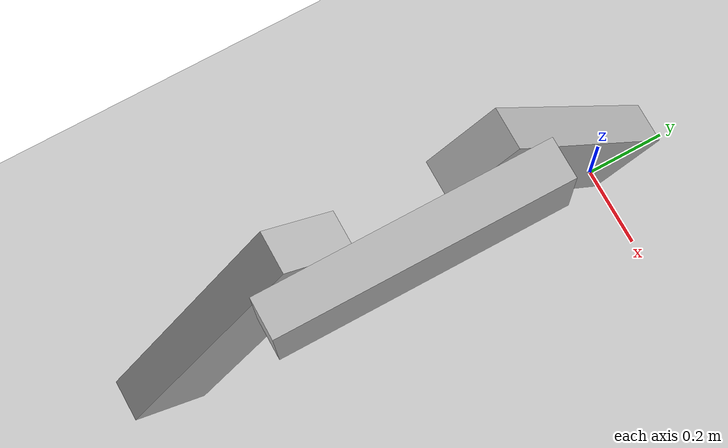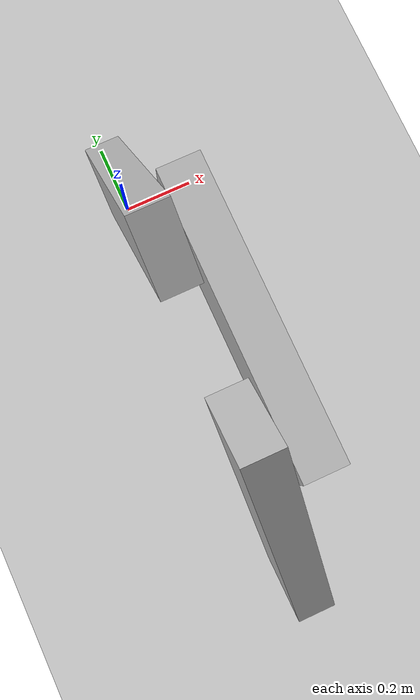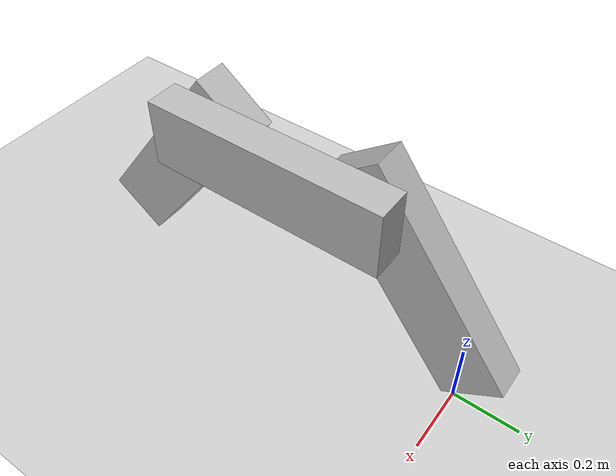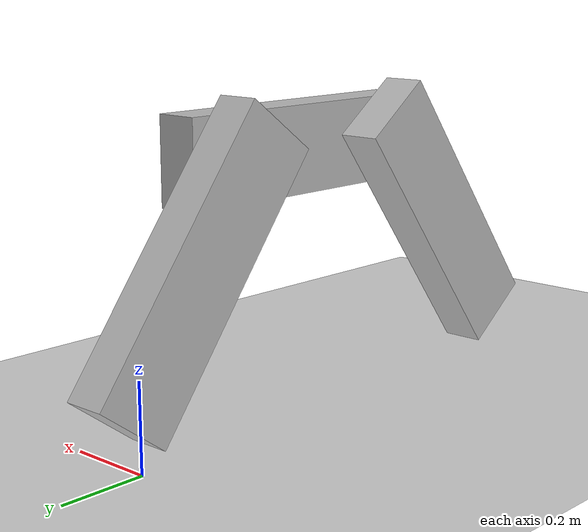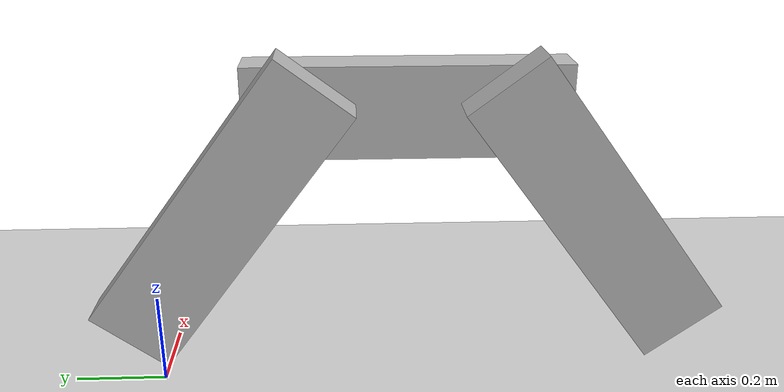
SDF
<?xml version="1.0" ?>
<sdf version='1.6'>
  <world name="default">
    <gravity>0 -10 0</gravity>
    <physics type="dart">
      <dart>
        <solver>
          <solver_type>pgs</solver_type>
        </solver>
      </dart>
    </physics>

    <include>
      <uri>model://ground_plane</uri>
    </include>

    <include>
      <uri>model://sun</uri>
    </include>

    <model name="anchored_loop">
      <link name="link1">
        <pose>0 0 0.2 0.6435 0 0</pose>
        <collision name="collision">
          <pose>0 0 0.25 0 0 0</pose>
          <geometry>
            <box>
              <size>0.1 0.2 0.7</size>
            </box>
          </geometry>
        </collision>
        <visual name="visual">
          <pose>0 0 0.25 0 0 0</pose>
          <geometry>
            <box>
              <size>0.1 0.2 0.7</size>
            </box>
          </geometry>
        </visual>
      </link>

      <link name="link2">
        <pose>0.1 -0.3 0.6 1.5708 0 0</pose>
        <collision name="collision">
          <pose>0 0 0.25 0 0 0</pose>
          <geometry>
            <box>
              <size>0.1 0.2 0.7</size>
            </box>
          </geometry>
        </collision>
        <visual name="visual">
          <pose>0 0 0.25 0 0 0</pose>
          <geometry>
            <box>
              <size>0.1 0.2 0.7</size>
            </box>
          </geometry>
        </visual>
      </link>

      <link name="link3">
        <pose>0 -0.8 0.6 2.4981 0 0</pose>
        <collision name="collision">
          <pose>0 0 0.25 0 0 0</pose>
          <geometry>
            <box>
              <size>0.1 0.2 0.7</size>
            </box>
          </geometry>
        </collision>
        <visual name="visual">
          <pose>0 0 0.25 0 0 0</pose>
          <geometry>
            <box>
              <size>0.1 0.2 0.7</size>
            </box>
          </geometry>
        </visual>
      </link>

      <joint name="joint1" type="revolute">
        <parent>world</parent>
        <child>link1</child>
        <axis>
          <xyz>1 0 0</xyz>
        </axis>
      </joint>

      <joint name="joint2" type="revolute">
        <parent>link1</parent>
        <child>link2</child>
        <axis>
          <xyz>1 0 0</xyz>
        </axis>
      </joint>

      <joint name="joint3" type="revolute">
        <parent>link2</parent>
        <child>link3</child>
        <axis>
          <xyz>1 0 0</xyz>
          <dynamics>
            <damping>5</damping>
            <friction>0.1</friction>
          </dynamics>
        </axis>
      </joint>

      <joint name="joint4" type="revolute">
        <pose>0 0 0.5 0 0 0</pose>
        <parent>world</parent>
        <child>link3</child>
        <axis>
          <xyz>1 0 0</xyz>
        </axis>
      </joint>
    </model>

  </world>
</sdf>
